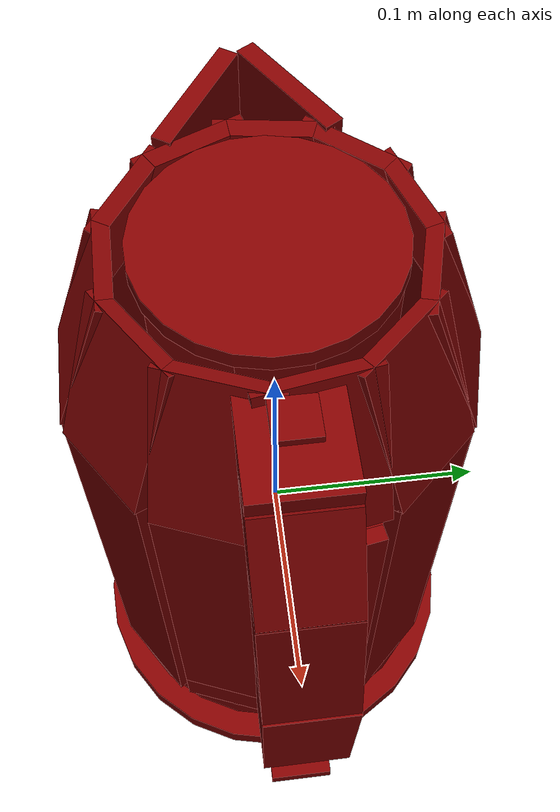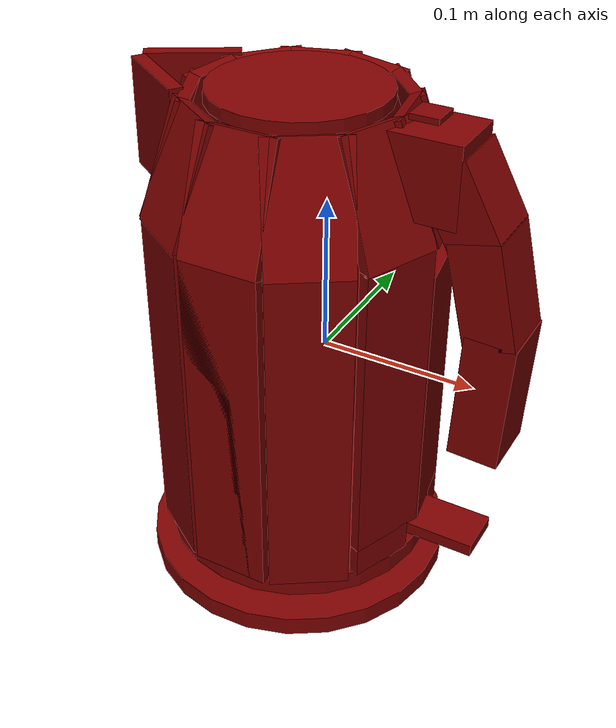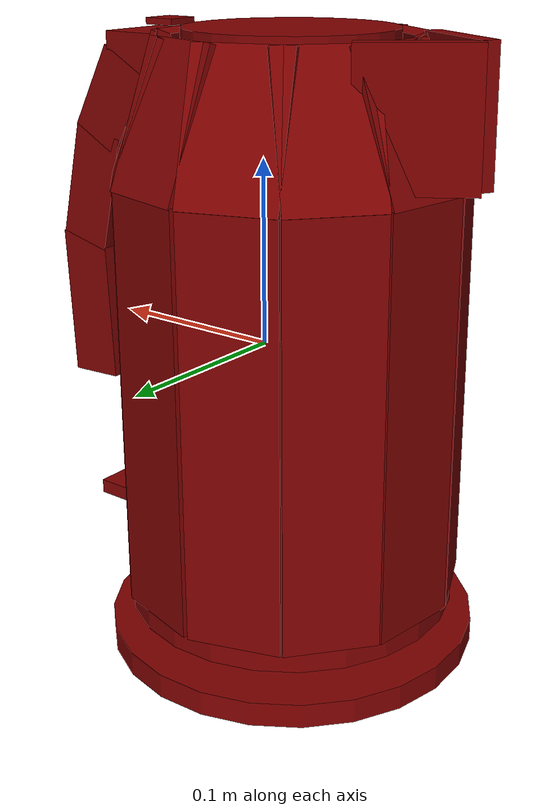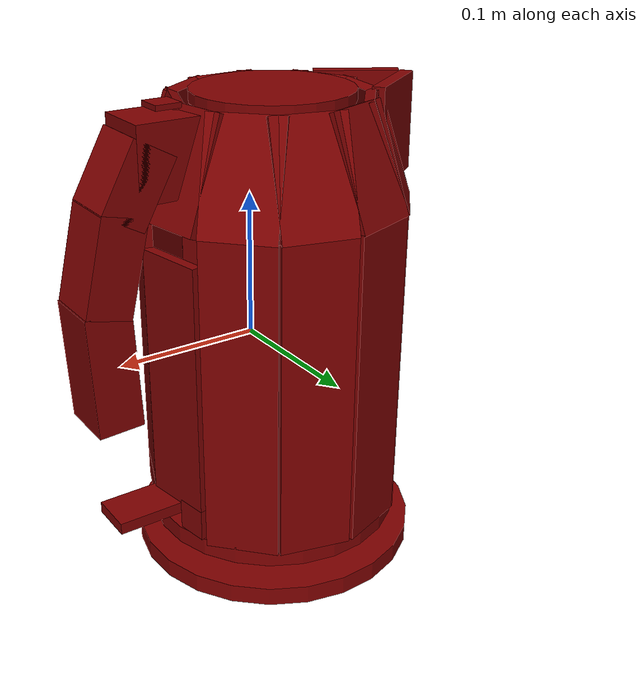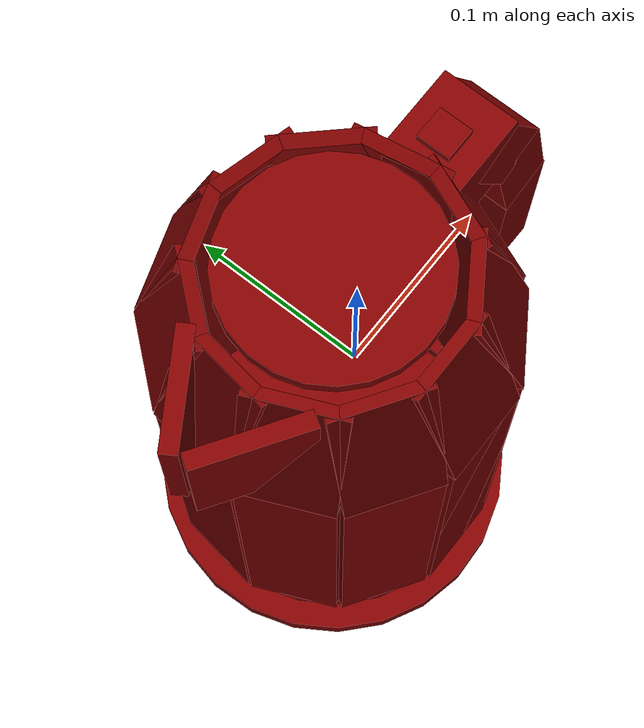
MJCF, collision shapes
<?xml version='1.0' encoding='UTF-8'?>
<mujoco model="model">
  <option timestep="0.002" gravity="0.0 0.0 -9.81"/>
  <compiler angle="radian"/>
  <asset>
    <mesh file="visuals/button_lid.obj" name="button_lid_vis"/>
    <mesh file="visuals/Body001.obj" name="Body001_vis"/>
    <mesh file="visuals/kettle_main.obj" name="kettle_main_vis"/>
    <mesh file="visuals/kettle_main_Clear.obj" name="kettle_main_Clear_vis"/>
    <mesh file="visuals/lid.obj" name="lid_vis"/>
    <mesh file="visuals/switch.obj" name="switch_vis"/>
    <texture file="visuals/T_BC001.png" name="Body001_material" type="2d"/>
    <material name="Body001_material" rgba="1 1 1 1.0" texture="Body001_material" shininess="0.5" specular="0.3103448502657381"/>
    <texture file="visuals/T_BC001.png" name="kettle_main_material" type="2d"/>
    <material name="kettle_main_material" rgba="1 1 1 1.0" texture="kettle_main_material" shininess="0.5" specular="0.3103448502657381"/>
    <texture file="visuals/T_BC001.png" name="button_lid_material" type="2d"/>
    <material name="button_lid_material" rgba="1 1 1 1.0" texture="button_lid_material" shininess="0.5" specular="0.3103448502657381"/>
    <texture file="visuals/T_BC001.png" name="kettle_main_Clear_material" type="2d"/>
    <material name="kettle_main_Clear_material" rgba="1 1 1 0.699999988079071" texture="kettle_main_Clear_material" shininess="0.5" specular="0.3103448502657381"/>
    <texture file="visuals/T_BC001.png" name="lid_material" type="2d"/>
    <material name="lid_material" rgba="1 1 1 1.0" texture="lid_material" shininess="0.5" specular="0.3103448502657381"/>
    <texture file="visuals/T_BC001.png" name="switch_material" type="2d"/>
    <material name="switch_material" rgba="1 1 1 1.0" texture="switch_material" shininess="0.5" specular="0.3103448502657381"/>
  </asset>
  <default>
    <default class="visual">
      <geom conaffinity="0" contype="0" group="1" type="mesh"/>
    </default>
    <default class="collision">
      <geom group="0" rgba="0.5 0 0 0.5"/>
    </default>
    <default class="spawn">
      <geom group="0" rgba="1 1 1 0.5" contype="0" conaffinity="0"/>
      <site group="0" rgba="1 1 1 0.5"/>
    </default>
    <default class="region">
      <geom group="1" conaffinity="0" contype="0" rgba="0 1 0 0" mass="0"/>
    </default>
  </default>
  <worldbody>
    <body>
      <body name="object">
        <geom mesh="Body001_vis" type="mesh" solimp="0.998 0.998 0.001" solref="0.001 1" friction="0.95 0.3 0.1" class="visual" material="Body001_material"/>
        <geom type="cylinder" pos="-0.01855741 0.00001535 -0.15809143" size="0.10137950628995895 0.006578653585165739" quat="0.6755902171134949 0.0 -0.0 -0.7372773289680481" class="collision"/>
        <geom type="cylinder" pos="-0.01855741 0.00001535 -0.15113570" size="0.0671452134847641 0.008745289407670498" quat="0.6755902171134949 0.0 -0.0 -0.7372773289680481" class="collision"/>
        <body name="kettle_main">
          <geom mesh="kettle_main_vis" type="mesh" solimp="0.998 0.998 0.001" solref="0.001 1" friction="0.95 0.3 0.1" class="visual" material="kettle_main_material"/>
          <geom type="cylinder" pos="-0.01787863 0.00001535 -0.13413707" size="0.08986473083496094 0.006378372199833393" quat="0.6755902171134949 0.0 -0.0 -0.7372773289680481" class="collision"/>
          <geom class="collision" type="box" pos="0.06591907 -0.00035358 0.13577516" size="0.02321777306497097 0.020326223224401474 0.024631893262267113" quat="1.0 0.0 0.0 0.0" name="handle_3"/>
          <geom class="collision" type="box" pos="0.08889549 -0.00035358 0.12383104" size="0.020326241850852966 0.015789516270160675 0.024822961539030075" quat="0.6846578121185303 -0.17675898969173431 -0.17675898969173431 0.6846577525138855" name="handle_2"/>
          <geom class="collision" type="box" pos="0.10654449 -0.00035359 0.07514820" size="0.020326241850852966 0.015789518132805824 0.03254279866814613" quat="0.7023094296455383 -0.08222831785678864 -0.08222831785678864 0.7023093700408936" name="handle_1"/>
          <geom class="collision" type="box" pos="0.11255367 -0.00035359 0.00604038" size="0.020326241850852966 0.015789518132805824 0.041692495346069336" quat="0.7069078683853149 0.01677246205508709 0.01677246205508709 0.7069078087806702" name="handle_main"/>
          <geom type="box" pos="-0.01856278 -0.08679790 -0.01807207" size="0.02502785623073578 0.003553319489583373 0.11131691187620163" quat="1.0 0.0 0.0 0.0" class="collision"/>
          <geom type="box" pos="-0.01856278 -0.07502179 0.12738462" size="0.0035533239133656025 0.025027872994542122 0.038026414811611176" quat="0.6968826055526733 -0.11981042474508286 0.11981041729450226 0.6968827843666077" class="collision"/>
          <geom type="box" pos="-0.01856278 -0.07502179 0.12738462" size="0.0035533239133656025 0.025027872994542122 0.038026414811611176" quat="0.6968826055526733 -0.11981042474508286 0.11981041729450226 0.6968827843666077" class="collision"/>
          <geom type="box" pos="-0.01856278 -0.08679790 -0.01807207" size="0.025027861818671227 0.0035533199552446604 0.11131692677736282" quat="1.0 0.0 0.0 0.0" class="collision"/>
          <geom type="box" pos="-0.06594101 -0.07245003 -0.01807207" size="0.0035533164627850056 0.025027872994542122 0.1113169714808464" quat="0.8797891139984131 0.0 0.0 0.47536423802375793" class="collision"/>
          <geom type="box" pos="-0.05948702 -0.06260001 0.12738462" size="0.0035533232148736715 0.025027871131896973 0.03802641108632088" quat="0.8670681715011597 -0.08054453134536743 0.14906927943229675 0.4684908986091614" class="collision"/>
          <geom type="box" pos="-0.08678374 -0.03007274 0.12738462" size="0.0035533239133656025 0.025027871131896973 0.038026414811611176" quat="0.9644036293029785 -0.03490365296602249 0.16580356657505035 0.2030186951160431" class="collision"/>
          <geom type="box" pos="-0.09756041 -0.03482038 -0.01807207" size="0.003553316229954362 0.025027871131896973 0.1113169714808464" quat="0.9785525798797607 0.0 0.0 0.20599718391895294" class="collision"/>
          <geom type="box" pos="-0.10380173 0.01263675 -0.01807207" size="0.0035533166956156492 0.02502787485718727 0.1113169714808464" quat="0.9973598718643188 0.0 0.0 -0.07261717319488525" class="collision"/>
          <geom type="box" pos="-0.09214981 0.01093097 0.12738462" size="0.003553324146196246 0.02502787485718727 0.03802641108632088" quat="0.9829390048980713 0.012304076924920082 0.16899020969867706 -0.07156714051961899" class="collision"/>
          <geom type="box" pos="-0.07527258 0.04808375 0.12738462" size="0.003553323680534959 0.025027872994542122 0.03802641108632088" quat="0.9261136054992676 0.05794724076986313 0.15922057628631592 -0.33705273270606995" class="collision"/>
          <geom type="box" pos="-0.08429395 0.05565286 -0.01807207" size="0.0035533164627850056 0.025027872994542122 0.1113169714808464" quat="0.9397007822990417 0.0 0.0 -0.3419977128505707" class="collision"/>
          <geom type="box" pos="-0.04492702 0.08208080 -0.01807207" size="0.0035533164627850056 0.025027872994542122 0.1113169714808464" quat="0.8100860118865967 0.0 0.0 -0.5863111019134521" class="collision"/>
          <geom type="box" pos="-0.04124724 0.07089438 0.12738462" size="0.003553323680534959 0.02502787485718727 0.038026414811611176" quat="0.7983729839324951 0.09934307634830475 0.13725894689559937 -0.5778334736824036" class="collision"/>
          <geom type="box" pos="0.00085155 0.07205921 0.12738462" size="0.003553324146196246 0.025027871131896973 0.038026414811611176" quat="0.6033421754837036 0.1339755356311798 0.10372861474752426 -0.7792747616767883" class="collision"/>
          <geom type="box" pos="0.00380073 0.08346006 -0.01807207" size="0.003553316229954362 0.025027871131896973 0.1113169714808464" quat="0.6121939420700073 0.0 0.0 -0.7907076478004456" class="collision"/>
          <geom type="box" pos="0.04508754 0.05878218 -0.01807207" size="0.0035533164627850056 0.025027872994542122 0.1113169714808464" quat="0.3683755695819855 0.0 0.0 -0.9296770691871643" class="collision"/>
          <geom type="box" pos="0.03650747 0.05071624 0.12738462" size="0.0035533239133656025 0.025027871131896973 0.03802641108632088" quat="0.3630492091178894 0.15752212703227997 0.06241663917899132 -0.9162347912788391" class="collision"/>
          <geom type="box" pos="0.05552828 0.01215144 0.12738462" size="0.003553323680534959 0.025027872994542122 0.03802641108632088" quat="0.0842772051692009 0.16881680488586426 0.014489213936030865 -0.9819309115409851" class="collision"/>
          <geom type="box" pos="0.06472796 0.02806091 -0.11515875" size="0.0035533164627850056 0.010918715037405491 0.011245767585933208" quat="0.0855136513710022 0.0 0.0 -0.9963369965553284" class="collision"/>
          <geom type="box" pos="0.06203224 -0.03268037 -0.00656201" size="0.0035533164627850056 0.025027872994542122 0.09980691969394684" quat="0.18889543414115906 0.0 0.0 0.9819971919059753" class="collision"/>
          <geom type="box" pos="0.05109650 -0.02831155 0.12738462" size="0.0035533239133656025 0.025027872994542122 0.03802641108632088" quat="0.18616418540477753 -0.16638708114624023 0.03200595825910568 0.9677984714508057" class="collision"/>
          <geom type="box" pos="0.02275126 -0.06280349 0.12738462" size="0.0035533239133656025 0.025027872994542122 0.03802641108632088" quat="0.46658357977867126 -0.14924590289592743 0.08021660894155502 0.8680960536003113" class="collision"/>
          <geom type="box" pos="0.02924849 -0.07262503 -0.01807207" size="0.0035533164627850056 0.025027872994542122 0.1113169714808464" quat="0.4734286963939667 0.0 0.0 0.8808321356773376" class="collision"/>
          <geom type="box" pos="-0.10105929 -0.02051548 0.13152003" size="0.004404331091791391 0.029513796791434288 0.03415337949991226" quat="0.8788750767707825 0.002036256482824683 0.0037515568546950817 0.4770328998565674" class="collision"/>
          <geom type="box" pos="-0.10241271 0.01835459 0.13153160" size="0.004404331091791391 0.029513802379369736 0.03415337949991226" quat="0.48492613434791565 0.0037330733612179756 0.0020699503365904093 0.8745446801185608" class="collision"/>
          <geom type="box" pos="0.06713218 0.01415810 -0.01657736" size="0.0035533164627850056 0.025027872994542122 0.08973562717437744" quat="0.0855136513710022 0.0 0.0 -0.9963369965553284" class="collision"/>
          <geom type="box" pos="0.06055357 -0.03638170 -0.11582393" size="0.0035533164627850056 0.02104211039841175 0.010718152858316898" quat="0.18889543414115906 0.0 0.0 0.9819971919059753" class="collision"/>
          <body name="button_lid">
            <joint axis="0.0 0.0 -1.0" pos="0.06144590 -0.00000001 0.16551031" limited="true" name="button_lid_joint" range="0.0 0.002" type="slide" damping="1" frictionloss="1" armature=".01" stiffness="1" springref="-0.5"/>
            <geom mesh="button_lid_vis" type="mesh" solimp="0.998 0.998 0.001" solref="0.001 1" friction="0.95 0.3 0.1" class="visual" material="button_lid_material"/>
            <geom class="collision" type="box" pos="0.06147129 -0.00006001 0.16555786" size="0.008809546940028667 0.009039090014994144 0.0017189487116411328" quat="1.0 0.0 0.0 0.0" name="button_lid_main"/>
          </body>
          <body name="kettle_main_Clear">
            <geom mesh="kettle_main_Clear_vis" type="mesh" solimp="0.998 0.998 0.001" solref="0.001 1" friction="0.95 0.3 0.1" class="visual" material="kettle_main_Clear_material"/>
            <geom type="box" pos="-0.01856766 -0.08783561 -0.00107168" size="0.0005408229189924896 0.0028736924286931753 0.07884011417627335" quat="0.6755902171134949 0.0 -0.0 -0.7372773289680481" class="collision"/>
          </body>
          <body name="lid">
            <joint axis="0.0 1.0 0.0" pos="0.04020047 -0.00002243 0.16366810" limited="true" name="lid_joint" range="0.0 1.5707963267948966" type="hinge" damping="1" frictionloss="0.1" armature=".01" stiffness="0.05" springref="-6"/>
            <geom mesh="lid_vis" type="mesh" solimp="0.998 0.998 0.001" solref="0.001 1" friction="0.95 0.3 0.1" class="visual" material="lid_material"/>
            <geom class="collision" type="cylinder" pos="-0.01822829 -0.00001345 0.16283385" size="0.054366803616285324 0.003852392081171274" quat="0.6755902171134949 0.0 -0.0 -0.7372773289680481" name="lid_main"/>
          </body>
          <body name="switch">
            <joint axis="0.0 0.0 -1.0" pos="0.07163432 0.00000000 -0.11271425" limited="true" name="switch_joint" range="0.0 0.01" type="slide" damping="1" frictionloss="1" armature=".01" stiffness="1" springref="-0.10"/>
            <geom mesh="switch_vis" type="mesh" solimp="0.998 0.998 0.001" solref="0.001 1" friction="0.95 0.3 0.1" class="visual" material="switch_material"/>
            <geom class="collision" type="box" pos="0.08747129 -0.00003722 -0.11250455" size="0.02751578949391842 0.01574653945863247 0.0040934160351753235" quat="1.0 0.0 0.0 0.0" name="switch_main"/>
          </body>
        </body>
        <geom class="region" name="reg_main" type="box" pos="2.750000000079078e-07 0.0 -3.749999999969056e-07" size="0.12821881499999999 0.10027657 0.168215375"/>
      </body>
    </body>
  </worldbody>
  <actuator>
    <motor name="button_lid_joint_actuator" joint="button_lid_joint" gear="0.5"/>
    <motor name="lid_joint_actuator" joint="lid_joint" gear="0.5"/>
    <motor name="switch_joint_actuator" joint="switch_joint" gear="0.5"/>
  </actuator>
</mujoco>
